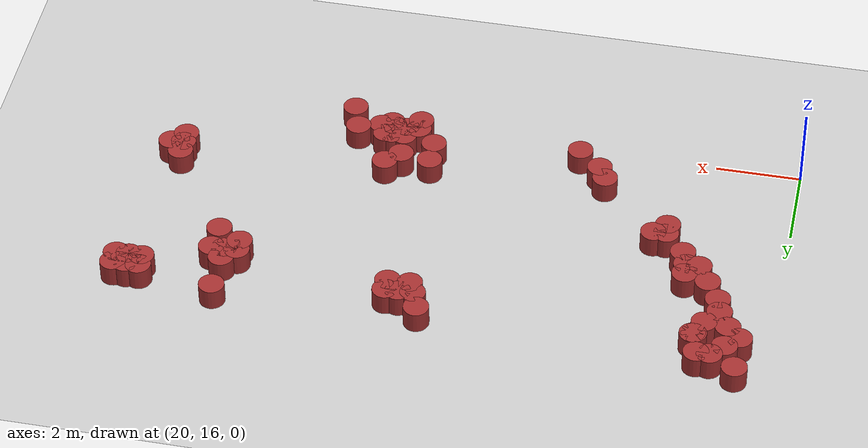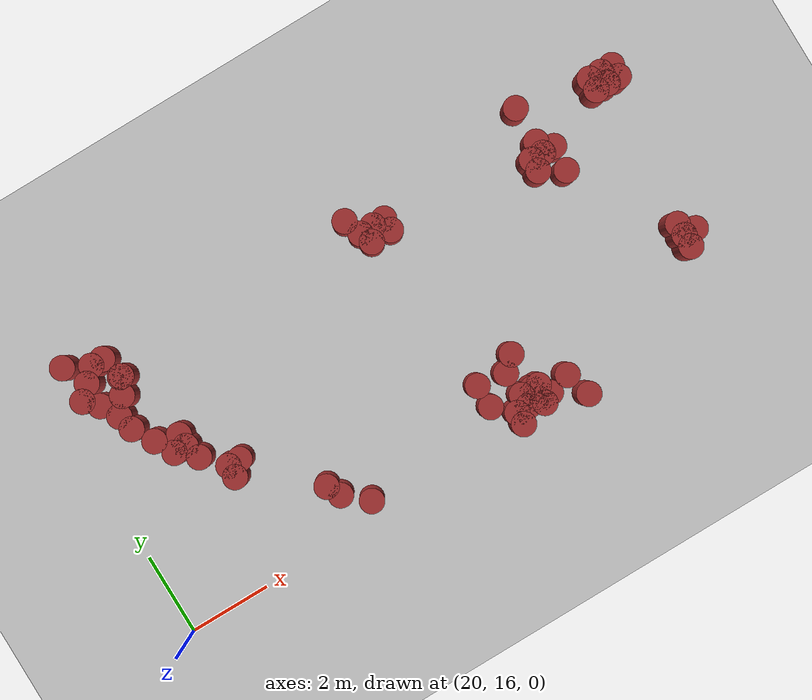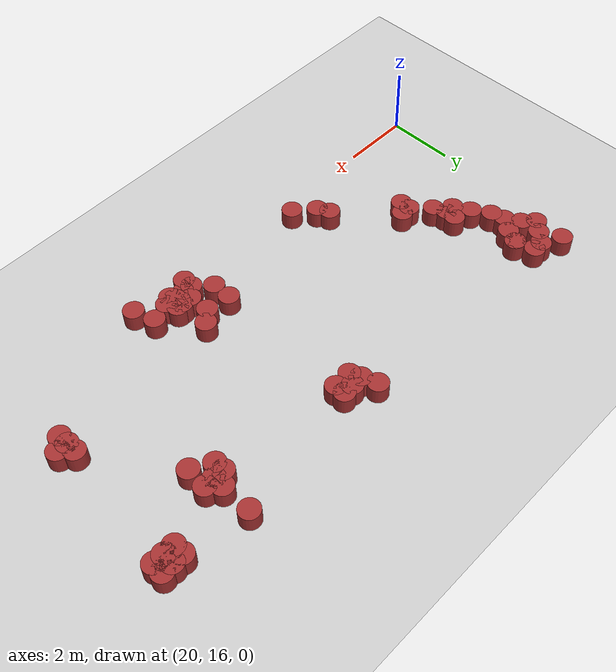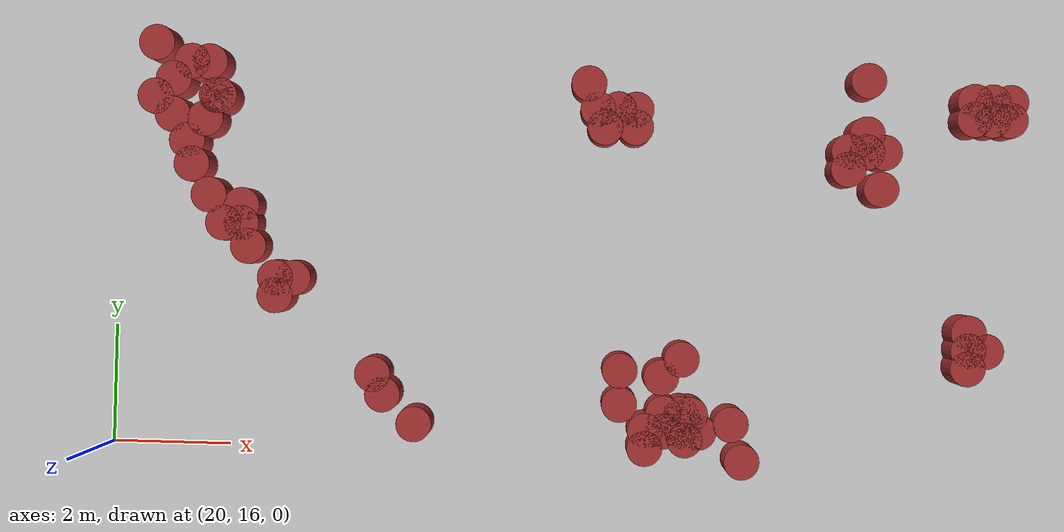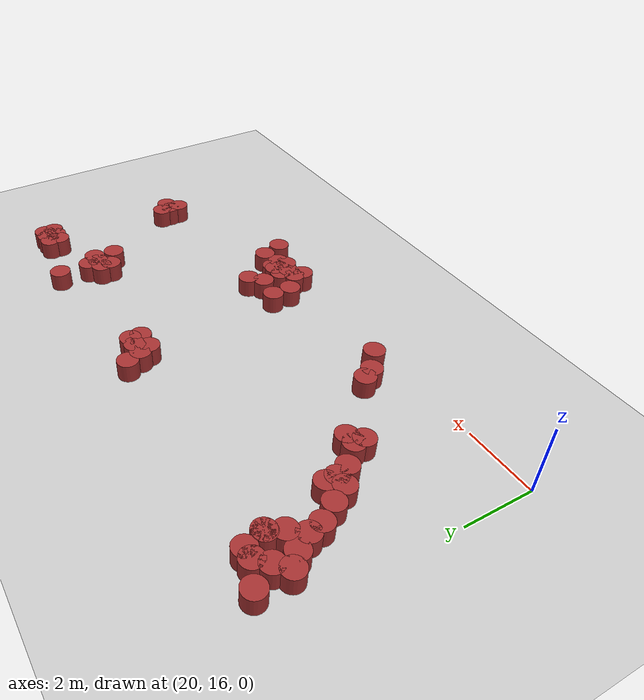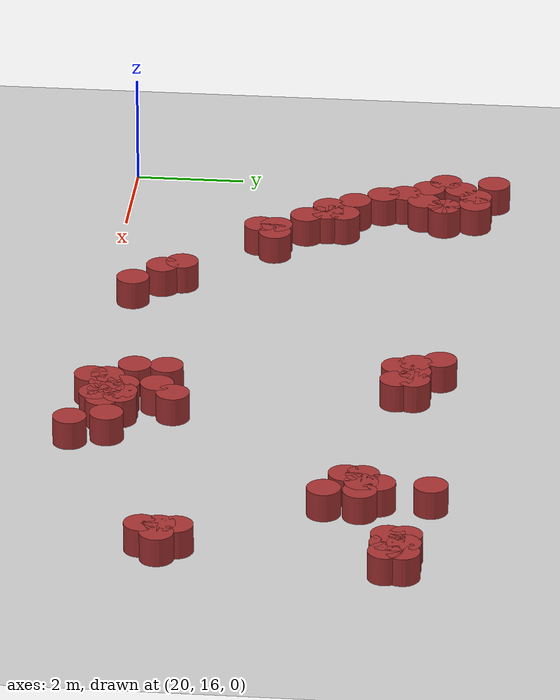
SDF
<sdf version="1.6">
 <world name="default">
  <model name="ground_plane">
   <static>1</static>
   <link name="link">
    <collision name="collision">
     <geometry><plane><normal>0 0 1</normal><size>100 100</size></plane></geometry>
     <surface><friction><ode><mu>100</mu><mu2>50</mu2></ode></friction></surface>
    </collision>
    <visual name="visual">
     <cast_shadows>0</cast_shadows>
     <geometry><plane><normal>0 0 1</normal><size>100 100</size></plane></geometry>
     <material>
      <script><uri>file://media/materials/scripts/gazebo.material</uri><name>Gazebo/Grey</name></script>
     </material>
    </visual>
   </link>
  </model>
  <model name="unit_cylinder_157">
   <static>1</static>
   <pose>30.5428 16.6467 0 0 -0 0</pose>
   <link name="link">
    <inertial>
     <mass>1</mass>
     <inertia><ixx>0.145833</ixx><ixy>0</ixy><ixz>0</ixz><iyy>0.145833</iyy><iyz>0</iyz><izz>0.125</izz></inertia>
    </inertial>
    <collision name="collision">
     <geometry><cylinder><radius>0.3</radius><length>1</length></cylinder></geometry>
    </collision>
    <visual name="visual">
     <geometry><cylinder><radius>0.3</radius><length>1</length></cylinder></geometry>
     <material><ambient>0.648 0.192 0.192 1</ambient><diffuse>0.648 0.192 0.192 1</diffuse></material>
     <material>
      <script><name>Gazebo/Grey</name><uri>file://media/materials/scripts/gazebo.material</uri></script>
     </material>
    </visual>
   </link>
  </model>
  <model name="unit_cylinder_230">
   <static>1</static>
   <pose>21.7649 21.9396 0 0 -0 0</pose>
   <link name="link">
    <inertial>
     <mass>1</mass>
     <inertia><ixx>0.145833</ixx><ixy>0</ixy><ixz>0</ixz><iyy>0.145833</iyy><iyz>0</iyz><izz>0.125</izz></inertia>
    </inertial>
    <collision name="collision">
     <geometry><cylinder><radius>0.3</radius><length>1</length></cylinder></geometry>
    </collision>
    <visual name="visual">
     <geometry><cylinder><radius>0.3</radius><length>1</length></cylinder></geometry>
     <material><ambient>0.648 0.192 0.192 1</ambient><diffuse>0.648 0.192 0.192 1</diffuse></material>
     <material>
      <script><name>Gazebo/Grey</name><uri>file://media/materials/scripts/gazebo.material</uri></script>
     </material>
    </visual>
   </link>
  </model>
  <model name="unit_cylinder_243">
   <static>1</static>
   <pose>21.731 21.9384 0 0 -0 0</pose>
   <link name="link">
    <inertial>
     <mass>1</mass>
     <inertia><ixx>0.145833</ixx><ixy>0</ixy><ixz>0</ixz><iyy>0.145833</iyy><iyz>0</iyz><izz>0.125</izz></inertia>
    </inertial>
    <collision name="collision">
     <geometry><cylinder><radius>0.3</radius><length>1</length></cylinder></geometry>
    </collision>
    <visual name="visual">
     <geometry><cylinder><radius>0.3</radius><length>1</length></cylinder></geometry>
     <material><ambient>0.648 0.192 0.192 1</ambient><diffuse>0.648 0.192 0.192 1</diffuse></material>
     <material>
      <script><name>Gazebo/Grey</name><uri>file://media/materials/scripts/gazebo.material</uri></script>
     </material>
    </visual>
   </link>
  </model>
  <model name="unit_cylinder_244">
   <static>1</static>
   <pose>21.5494 21.5438 0 0 -0 0</pose>
   <link name="link">
    <inertial>
     <mass>1</mass>
     <inertia><ixx>0.145833</ixx><ixy>0</ixy><ixz>0</ixz><iyy>0.145833</iyy><iyz>0</iyz><izz>0.125</izz></inertia>
    </inertial>
    <collision name="collision">
     <geometry><cylinder><radius>0.3</radius><length>1</length></cylinder></geometry>
    </collision>
    <visual name="visual">
     <geometry><cylinder><radius>0.3</radius><length>1</length></cylinder></geometry>
     <material><ambient>0.648 0.192 0.192 1</ambient><diffuse>0.648 0.192 0.192 1</diffuse></material>
     <material>
      <script><name>Gazebo/Grey</name><uri>file://media/materials/scripts/gazebo.material</uri></script>
     </material>
    </visual>
   </link>
  </model>
  <model name="unit_cylinder_247">
   <static>1</static>
   <pose>21.3401 20.7751 0 0 -0 0</pose>
   <link name="link">
    <inertial>
     <mass>1</mass>
     <inertia><ixx>0.145833</ixx><ixy>0</ixy><ixz>0</ixz><iyy>0.145833</iyy><iyz>0</iyz><izz>0.125</izz></inertia>
    </inertial>
    <collision name="collision">
     <geometry><cylinder><radius>0.3</radius><length>1</length></cylinder></geometry>
    </collision>
    <visual name="visual">
     <geometry><cylinder><radius>0.3</radius><length>1</length></cylinder></geometry>
     <material><ambient>0.648 0.192 0.192 1</ambient><diffuse>0.648 0.192 0.192 1</diffuse></material>
     <material>
      <script><name>Gazebo/Grey</name><uri>file://media/materials/scripts/gazebo.material</uri></script>
     </material>
    </visual>
   </link>
  </model>
  <model name="unit_cylinder_248">
   <static>1</static>
   <pose>21.2494 21.1669 0 0 -0 0</pose>
   <link name="link">
    <inertial>
     <mass>1</mass>
     <inertia><ixx>0.145833</ixx><ixy>0</ixy><ixz>0</ixz><iyy>0.145833</iyy><iyz>0</iyz><izz>0.125</izz></inertia>
    </inertial>
    <collision name="collision">
     <geometry><cylinder><radius>0.3</radius><length>1</length></cylinder></geometry>
    </collision>
    <visual name="visual">
     <geometry><cylinder><radius>0.3</radius><length>1</length></cylinder></geometry>
     <material><ambient>0.648 0.192 0.192 1</ambient><diffuse>0.648 0.192 0.192 1</diffuse></material>
     <material>
      <script><name>Gazebo/Grey</name><uri>file://media/materials/scripts/gazebo.material</uri></script>
     </material>
    </visual>
   </link>
  </model>
  <model name="unit_cylinder_249">
   <static>1</static>
   <pose>21.6412 20.2652 0 0 -0 0</pose>
   <link name="link">
    <inertial>
     <mass>1</mass>
     <inertia><ixx>0.145833</ixx><ixy>0</ixy><ixz>0</ixz><iyy>0.145833</iyy><iyz>0</iyz><izz>0.125</izz></inertia>
    </inertial>
    <collision name="collision">
     <geometry><cylinder><radius>0.3</radius><length>1</length></cylinder></geometry>
    </collision>
    <visual name="visual">
     <geometry><cylinder><radius>0.3</radius><length>1</length></cylinder></geometry>
     <material><ambient>0.648 0.192 0.192 1</ambient><diffuse>0.648 0.192 0.192 1</diffuse></material>
     <material>
      <script><name>Gazebo/Grey</name><uri>file://media/materials/scripts/gazebo.material</uri></script>
     </material>
    </visual>
   </link>
  </model>
  <model name="unit_cylinder_251">
   <static>1</static>
   <pose>22.3307 19.4181 0 0 -0 0</pose>
   <link name="link">
    <inertial>
     <mass>1</mass>
     <inertia><ixx>0.145833</ixx><ixy>0</ixy><ixz>0</ixz><iyy>0.145833</iyy><iyz>0</iyz><izz>0.125</izz></inertia>
    </inertial>
    <collision name="collision">
     <geometry><cylinder><radius>0.3</radius><length>1</length></cylinder></geometry>
    </collision>
    <visual name="visual">
     <geometry><cylinder><radius>0.3</radius><length>1</length></cylinder></geometry>
     <material><ambient>0.648 0.192 0.192 1</ambient><diffuse>0.648 0.192 0.192 1</diffuse></material>
     <material>
      <script><name>Gazebo/Grey</name><uri>file://media/materials/scripts/gazebo.material</uri></script>
     </material>
    </visual>
   </link>
  </model>
  <model name="unit_cylinder_254">
   <static>1</static>
   <pose>28.6458 17.5013 0 0 -0 0</pose>
   <link name="link">
    <inertial>
     <mass>1</mass>
     <inertia><ixx>0.145833</ixx><ixy>0</ixy><ixz>0</ixz><iyy>0.145833</iyy><iyz>0</iyz><izz>0.125</izz></inertia>
    </inertial>
    <collision name="collision">
     <geometry><cylinder><radius>0.3</radius><length>1</length></cylinder></geometry>
    </collision>
    <visual name="visual">
     <geometry><cylinder><radius>0.3</radius><length>1</length></cylinder></geometry>
     <material><ambient>0.648 0.192 0.192 1</ambient><diffuse>0.648 0.192 0.192 1</diffuse></material>
     <material>
      <script><name>Gazebo/Grey</name><uri>file://media/materials/scripts/gazebo.material</uri></script>
     </material>
    </visual>
   </link>
  </model>
  <model name="unit_cylinder_260">
   <static>1</static>
   <pose>20.7 21.9 0 0 -0 0</pose>
   <link name="link">
    <inertial>
     <mass>1</mass>
     <inertia><ixx>0.145833</ixx><ixy>0</ixy><ixz>0</ixz><iyy>0.145833</iyy><iyz>0</iyz><izz>0.125</izz></inertia>
    </inertial>
    <collision name="collision">
     <geometry><cylinder><radius>0.3</radius><length>1</length></cylinder></geometry>
    </collision>
    <visual name="visual">
     <geometry><cylinder><radius>0.3</radius><length>1</length></cylinder></geometry>
     <material><ambient>0.648 0.192 0.192 1</ambient><diffuse>0.648 0.192 0.192 1</diffuse></material>
     <material>
      <script><name>Gazebo/Grey</name><uri>file://media/materials/scripts/gazebo.material</uri></script>
     </material>
    </visual>
   </link>
  </model>
  <model name="unit_cylinder_261">
   <static>1</static>
   <pose>20.7 22.8 0 0 -0 0</pose>
   <link name="link">
    <inertial>
     <mass>1</mass>
     <inertia><ixx>0.145833</ixx><ixy>0</ixy><ixz>0</ixz><iyy>0.145833</iyy><iyz>0</iyz><izz>0.125</izz></inertia>
    </inertial>
    <collision name="collision">
     <geometry><cylinder><radius>0.3</radius><length>1</length></cylinder></geometry>
    </collision>
    <visual name="visual">
     <geometry><cylinder><radius>0.3</radius><length>1</length></cylinder></geometry>
     <material><ambient>0.648 0.192 0.192 1</ambient><diffuse>0.648 0.192 0.192 1</diffuse></material>
     <material>
      <script><name>Gazebo/Grey</name><uri>file://media/materials/scripts/gazebo.material</uri></script>
     </material>
    </visual>
   </link>
  </model>
  <model name="unit_cylinder_268">
   <static>1</static>
   <pose>21 21.6 0 0 -0 0</pose>
   <link name="link">
    <inertial>
     <mass>1</mass>
     <inertia><ixx>0.145833</ixx><ixy>0</ixy><ixz>0</ixz><iyy>0.145833</iyy><iyz>0</iyz><izz>0.125</izz></inertia>
    </inertial>
    <collision name="collision">
     <geometry><cylinder><radius>0.3</radius><length>1</length></cylinder></geometry>
    </collision>
    <visual name="visual">
     <geometry><cylinder><radius>0.3</radius><length>1</length></cylinder></geometry>
     <material><ambient>0.648 0.192 0.192 1</ambient><diffuse>0.648 0.192 0.192 1</diffuse></material>
     <material>
      <script><name>Gazebo/Grey</name><uri>file://media/materials/scripts/gazebo.material</uri></script>
     </material>
    </visual>
   </link>
  </model>
  <model name="unit_cylinder_269">
   <static>1</static>
   <pose>21 22.2 0 0 -0 0</pose>
   <link name="link">
    <inertial>
     <mass>1</mass>
     <inertia><ixx>0.145833</ixx><ixy>0</ixy><ixz>0</ixz><iyy>0.145833</iyy><iyz>0</iyz><izz>0.125</izz></inertia>
    </inertial>
    <collision name="collision">
     <geometry><cylinder><radius>0.3</radius><length>1</length></cylinder></geometry>
    </collision>
    <visual name="visual">
     <geometry><cylinder><radius>0.3</radius><length>1</length></cylinder></geometry>
     <material><ambient>0.648 0.192 0.192 1</ambient><diffuse>0.648 0.192 0.192 1</diffuse></material>
     <material>
      <script><name>Gazebo/Grey</name><uri>file://media/materials/scripts/gazebo.material</uri></script>
     </material>
    </visual>
   </link>
  </model>
  <model name="unit_cylinder_275">
   <static>1</static>
   <pose>21.3 22.5 0 0 -0 0</pose>
   <link name="link">
    <inertial>
     <mass>1</mass>
     <inertia><ixx>0.145833</ixx><ixy>0</ixy><ixz>0</ixz><iyy>0.145833</iyy><iyz>0</iyz><izz>0.125</izz></inertia>
    </inertial>
    <collision name="collision">
     <geometry><cylinder><radius>0.3</radius><length>1</length></cylinder></geometry>
    </collision>
    <visual name="visual">
     <geometry><cylinder><radius>0.3</radius><length>1</length></cylinder></geometry>
     <material><ambient>0.648 0.192 0.192 1</ambient><diffuse>0.648 0.192 0.192 1</diffuse></material>
     <material>
      <script><name>Gazebo/Grey</name><uri>file://media/materials/scripts/gazebo.material</uri></script>
     </material>
    </visual>
   </link>
  </model>
  <model name="unit_cylinder_278">
   <static>1</static>
   <pose>21.6 22.5 0 0 -0 0</pose>
   <link name="link">
    <inertial>
     <mass>1</mass>
     <inertia><ixx>0.145833</ixx><ixy>0</ixy><ixz>0</ixz><iyy>0.145833</iyy><iyz>0</iyz><izz>0.125</izz></inertia>
    </inertial>
    <collision name="collision">
     <geometry><cylinder><radius>0.3</radius><length>1</length></cylinder></geometry>
    </collision>
    <visual name="visual">
     <geometry><cylinder><radius>0.3</radius><length>1</length></cylinder></geometry>
     <material><ambient>0.648 0.192 0.192 1</ambient><diffuse>0.648 0.192 0.192 1</diffuse></material>
     <material>
      <script><name>Gazebo/Grey</name><uri>file://media/materials/scripts/gazebo.material</uri></script>
     </material>
    </visual>
   </link>
  </model>
  <model name="unit_cylinder_283">
   <static>1</static>
   <pose>21.9 19.8 0 0 -0 0</pose>
   <link name="link">
    <inertial>
     <mass>1</mass>
     <inertia><ixx>0.145833</ixx><ixy>0</ixy><ixz>0</ixz><iyy>0.145833</iyy><iyz>0</iyz><izz>0.125</izz></inertia>
    </inertial>
    <collision name="collision">
     <geometry><cylinder><radius>0.3</radius><length>1</length></cylinder></geometry>
    </collision>
    <visual name="visual">
     <geometry><cylinder><radius>0.3</radius><length>1</length></cylinder></geometry>
     <material><ambient>0.648 0.192 0.192 1</ambient><diffuse>0.648 0.192 0.192 1</diffuse></material>
     <material>
      <script><name>Gazebo/Grey</name><uri>file://media/materials/scripts/gazebo.material</uri></script>
     </material>
    </visual>
   </link>
  </model>
  <model name="unit_cylinder_288">
   <static>1</static>
   <pose>22.2 19.8 0 0 -0 0</pose>
   <link name="link">
    <inertial>
     <mass>1</mass>
     <inertia><ixx>0.145833</ixx><ixy>0</ixy><ixz>0</ixz><iyy>0.145833</iyy><iyz>0</iyz><izz>0.125</izz></inertia>
    </inertial>
    <collision name="collision">
     <geometry><cylinder><radius>0.3</radius><length>1</length></cylinder></geometry>
    </collision>
    <visual name="visual">
     <geometry><cylinder><radius>0.3</radius><length>1</length></cylinder></geometry>
     <material><ambient>0.648 0.192 0.192 1</ambient><diffuse>0.648 0.192 0.192 1</diffuse></material>
     <material>
      <script><name>Gazebo/Grey</name><uri>file://media/materials/scripts/gazebo.material</uri></script>
     </material>
    </visual>
   </link>
  </model>
  <model name="unit_cylinder_289">
   <static>1</static>
   <pose>22.2 20.1 0 0 -0 0</pose>
   <link name="link">
    <inertial>
     <mass>1</mass>
     <inertia><ixx>0.145833</ixx><ixy>0</ixy><ixz>0</ixz><iyy>0.145833</iyy><iyz>0</iyz><izz>0.125</izz></inertia>
    </inertial>
    <collision name="collision">
     <geometry><cylinder><radius>0.3</radius><length>1</length></cylinder></geometry>
    </collision>
    <visual name="visual">
     <geometry><cylinder><radius>0.3</radius><length>1</length></cylinder></geometry>
     <material><ambient>0.648 0.192 0.192 1</ambient><diffuse>0.648 0.192 0.192 1</diffuse></material>
     <material>
      <script><name>Gazebo/Grey</name><uri>file://media/materials/scripts/gazebo.material</uri></script>
     </material>
    </visual>
   </link>
  </model>
  <model name="unit_cylinder_295">
   <static>1</static>
   <pose>22.8 18.6 0 0 -0 0</pose>
   <link name="link">
    <inertial>
     <mass>1</mass>
     <inertia><ixx>0.145833</ixx><ixy>0</ixy><ixz>0</ixz><iyy>0.145833</iyy><iyz>0</iyz><izz>0.125</izz></inertia>
    </inertial>
    <collision name="collision">
     <geometry><cylinder><radius>0.3</radius><length>1</length></cylinder></geometry>
    </collision>
    <visual name="visual">
     <geometry><cylinder><radius>0.3</radius><length>1</length></cylinder></geometry>
     <material><ambient>0.648 0.192 0.192 1</ambient><diffuse>0.648 0.192 0.192 1</diffuse></material>
     <material>
      <script><name>Gazebo/Grey</name><uri>file://media/materials/scripts/gazebo.material</uri></script>
     </material>
    </visual>
   </link>
  </model>
  <model name="unit_cylinder_296">
   <static>1</static>
   <pose>22.8 18.9 0 0 -0 0</pose>
   <link name="link">
    <inertial>
     <mass>1</mass>
     <inertia><ixx>0.145833</ixx><ixy>0</ixy><ixz>0</ixz><iyy>0.145833</iyy><iyz>0</iyz><izz>0.125</izz></inertia>
    </inertial>
    <collision name="collision">
     <geometry><cylinder><radius>0.3</radius><length>1</length></cylinder></geometry>
    </collision>
    <visual name="visual">
     <geometry><cylinder><radius>0.3</radius><length>1</length></cylinder></geometry>
     <material><ambient>0.648 0.192 0.192 1</ambient><diffuse>0.648 0.192 0.192 1</diffuse></material>
     <material>
      <script><name>Gazebo/Grey</name><uri>file://media/materials/scripts/gazebo.material</uri></script>
     </material>
    </visual>
   </link>
  </model>
  <model name="unit_cylinder_307">
   <static>1</static>
   <pose>23.1 18.9 0 0 -0 0</pose>
   <link name="link">
    <inertial>
     <mass>1</mass>
     <inertia><ixx>0.145833</ixx><ixy>0</ixy><ixz>0</ixz><iyy>0.145833</iyy><iyz>0</iyz><izz>0.125</izz></inertia>
    </inertial>
    <collision name="collision">
     <geometry><cylinder><radius>0.3</radius><length>1</length></cylinder></geometry>
    </collision>
    <visual name="visual">
     <geometry><cylinder><radius>0.3</radius><length>1</length></cylinder></geometry>
     <material><ambient>0.648 0.192 0.192 1</ambient><diffuse>0.648 0.192 0.192 1</diffuse></material>
     <material>
      <script><name>Gazebo/Grey</name><uri>file://media/materials/scripts/gazebo.material</uri></script>
     </material>
    </visual>
   </link>
  </model>
  <model name="unit_cylinder_309">
   <static>1</static>
   <pose>28.2845 21.5885 0 0 -0 0</pose>
   <link name="link">
    <inertial>
     <mass>1</mass>
     <inertia><ixx>0.145833</ixx><ixy>0</ixy><ixz>0</ixz><iyy>0.145833</iyy><iyz>0</iyz><izz>0.125</izz></inertia>
    </inertial>
    <collision name="collision">
     <geometry><cylinder><radius>0.3</radius><length>1</length></cylinder></geometry>
    </collision>
    <visual name="visual">
     <geometry><cylinder><radius>0.3</radius><length>1</length></cylinder></geometry>
     <material><ambient>0.648 0.192 0.192 1</ambient><diffuse>0.648 0.192 0.192 1</diffuse></material>
     <material>
      <script><name>Gazebo/Grey</name><uri>file://media/materials/scripts/gazebo.material</uri></script>
     </material>
    </visual>
   </link>
  </model>
  <model name="unit_cylinder_310">
   <static>1</static>
   <pose>27.9939 22.3195 0 0 -0 0</pose>
   <link name="link">
    <inertial>
     <mass>1</mass>
     <inertia><ixx>0.145833</ixx><ixy>0</ixy><ixz>0</ixz><iyy>0.145833</iyy><iyz>0</iyz><izz>0.125</izz></inertia>
    </inertial>
    <collision name="collision">
     <geometry><cylinder><radius>0.3</radius><length>1</length></cylinder></geometry>
    </collision>
    <visual name="visual">
     <geometry><cylinder><radius>0.3</radius><length>1</length></cylinder></geometry>
     <material><ambient>0.648 0.192 0.192 1</ambient><diffuse>0.648 0.192 0.192 1</diffuse></material>
     <material>
      <script><name>Gazebo/Grey</name><uri>file://media/materials/scripts/gazebo.material</uri></script>
     </material>
    </visual>
   </link>
  </model>
  <model name="unit_cylinder_311">
   <static>1</static>
   <pose>29.6839 17.7191 0 0 -0 0</pose>
   <link name="link">
    <inertial>
     <mass>1</mass>
     <inertia><ixx>0.145833</ixx><ixy>0</ixy><ixz>0</ixz><iyy>0.145833</iyy><iyz>0</iyz><izz>0.125</izz></inertia>
    </inertial>
    <collision name="collision">
     <geometry><cylinder><radius>0.3</radius><length>1</length></cylinder></geometry>
    </collision>
    <visual name="visual">
     <geometry><cylinder><radius>0.3</radius><length>1</length></cylinder></geometry>
     <material><ambient>0.648 0.192 0.192 1</ambient><diffuse>0.648 0.192 0.192 1</diffuse></material>
     <material>
      <script><name>Gazebo/Grey</name><uri>file://media/materials/scripts/gazebo.material</uri></script>
     </material>
    </visual>
   </link>
  </model>
  <model name="unit_cylinder_312">
   <static>1</static>
   <pose>29.3489 17.4075 0 0 -0 0</pose>
   <link name="link">
    <inertial>
     <mass>1</mass>
     <inertia><ixx>0.145833</ixx><ixy>0</ixy><ixz>0</ixz><iyy>0.145833</iyy><iyz>0</iyz><izz>0.125</izz></inertia>
    </inertial>
    <collision name="collision">
     <geometry><cylinder><radius>0.3</radius><length>1</length></cylinder></geometry>
    </collision>
    <visual name="visual">
     <geometry><cylinder><radius>0.3</radius><length>1</length></cylinder></geometry>
     <material><ambient>0.648 0.192 0.192 1</ambient><diffuse>0.648 0.192 0.192 1</diffuse></material>
     <material>
      <script><name>Gazebo/Grey</name><uri>file://media/materials/scripts/gazebo.material</uri></script>
     </material>
    </visual>
   </link>
  </model>
  <model name="unit_cylinder_317">
   <static>1</static>
   <pose>24.4813 17.3256 0 0 -0 0</pose>
   <link name="link">
    <inertial>
     <mass>1</mass>
     <inertia><ixx>0.145833</ixx><ixy>0</ixy><ixz>0</ixz><iyy>0.145833</iyy><iyz>0</iyz><izz>0.125</izz></inertia>
    </inertial>
    <collision name="collision">
     <geometry><cylinder><radius>0.3</radius><length>1</length></cylinder></geometry>
    </collision>
    <visual name="visual">
     <geometry><cylinder><radius>0.3</radius><length>1</length></cylinder></geometry>
     <material><ambient>0.648 0.192 0.192 1</ambient><diffuse>0.648 0.192 0.192 1</diffuse></material>
     <material>
      <script><name>Gazebo/Grey</name><uri>file://media/materials/scripts/gazebo.material</uri></script>
     </material>
    </visual>
   </link>
  </model>
  <model name="unit_cylinder_320">
   <static>1</static>
   <pose>25.2 16.5 0 0 -0 0</pose>
   <link name="link">
    <inertial>
     <mass>1</mass>
     <inertia><ixx>0.145833</ixx><ixy>0</ixy><ixz>0</ixz><iyy>0.145833</iyy><iyz>0</iyz><izz>0.125</izz></inertia>
    </inertial>
    <collision name="collision">
     <geometry><cylinder><radius>0.3</radius><length>1</length></cylinder></geometry>
    </collision>
    <visual name="visual">
     <geometry><cylinder><radius>0.3</radius><length>1</length></cylinder></geometry>
     <material><ambient>0.648 0.192 0.192 1</ambient><diffuse>0.648 0.192 0.192 1</diffuse></material>
     <material>
      <script><name>Gazebo/Grey</name><uri>file://media/materials/scripts/gazebo.material</uri></script>
     </material>
    </visual>
   </link>
  </model>
  <model name="unit_cylinder_321">
   <static>1</static>
   <pose>28.1583 21.8856 0 0 -0 0</pose>
   <link name="link">
    <inertial>
     <mass>1</mass>
     <inertia><ixx>0.145833</ixx><ixy>0</ixy><ixz>0</ixz><iyy>0.145833</iyy><iyz>0</iyz><izz>0.125</izz></inertia>
    </inertial>
    <collision name="collision">
     <geometry><cylinder><radius>0.3</radius><length>1</length></cylinder></geometry>
    </collision>
    <visual name="visual">
     <geometry><cylinder><radius>0.3</radius><length>1</length></cylinder></geometry>
     <material><ambient>0.648 0.192 0.192 1</ambient><diffuse>0.648 0.192 0.192 1</diffuse></material>
     <material>
      <script><name>Gazebo/Grey</name><uri>file://media/materials/scripts/gazebo.material</uri></script>
     </material>
    </visual>
   </link>
  </model>
  <model name="unit_cylinder_331">
   <static>1</static>
   <pose>24.6576 16.9847 0 0 -0 0</pose>
   <link name="link">
    <inertial>
     <mass>1</mass>
     <inertia><ixx>0.145833</ixx><ixy>0</ixy><ixz>0</ixz><iyy>0.145833</iyy><iyz>0</iyz><izz>0.125</izz></inertia>
    </inertial>
    <collision name="collision">
     <geometry><cylinder><radius>0.3</radius><length>1</length></cylinder></geometry>
    </collision>
    <visual name="visual">
     <geometry><cylinder><radius>0.3</radius><length>1</length></cylinder></geometry>
     <material><ambient>0.648 0.192 0.192 1</ambient><diffuse>0.648 0.192 0.192 1</diffuse></material>
     <material>
      <script><name>Gazebo/Grey</name><uri>file://media/materials/scripts/gazebo.material</uri></script>
     </material>
    </visual>
   </link>
  </model>
  <model name="unit_cylinder_337">
   <static>1</static>
   <pose>30.741 16.0186 0 0 -0 0</pose>
   <link name="link">
    <inertial>
     <mass>1</mass>
     <inertia><ixx>0.145833</ixx><ixy>0</ixy><ixz>0</ixz><iyy>0.145833</iyy><iyz>0</iyz><izz>0.125</izz></inertia>
    </inertial>
    <collision name="collision">
     <geometry><cylinder><radius>0.3</radius><length>1</length></cylinder></geometry>
    </collision>
    <visual name="visual">
     <geometry><cylinder><radius>0.3</radius><length>1</length></cylinder></geometry>
     <material><ambient>0.648 0.192 0.192 1</ambient><diffuse>0.648 0.192 0.192 1</diffuse></material>
     <material>
      <script><name>Gazebo/Grey</name><uri>file://media/materials/scripts/gazebo.material</uri></script>
     </material>
    </visual>
   </link>
  </model>
  <model name="unit_cylinder_347">
   <static>1</static>
   <pose>28.6523 16.9294 0 0 -0 0</pose>
   <link name="link">
    <inertial>
     <mass>1</mass>
     <inertia><ixx>0.145833</ixx><ixy>0</ixy><ixz>0</ixz><iyy>0.145833</iyy><iyz>0</iyz><izz>0.125</izz></inertia>
    </inertial>
    <collision name="collision">
     <geometry><cylinder><radius>0.3</radius><length>1</length></cylinder></geometry>
    </collision>
    <visual name="visual">
     <geometry><cylinder><radius>0.3</radius><length>1</length></cylinder></geometry>
     <material><ambient>0.648 0.192 0.192 1</ambient><diffuse>0.648 0.192 0.192 1</diffuse></material>
     <material>
      <script><name>Gazebo/Grey</name><uri>file://media/materials/scripts/gazebo.material</uri></script>
     </material>
    </visual>
   </link>
  </model>
  <model name="unit_cylinder_351">
   <static>1</static>
   <pose>29.7714 16.3636 0 0 -0 0</pose>
   <link name="link">
    <inertial>
     <mass>1</mass>
     <inertia><ixx>0.145833</ixx><ixy>0</ixy><ixz>0</ixz><iyy>0.145833</iyy><iyz>0</iyz><izz>0.125</izz></inertia>
    </inertial>
    <collision name="collision">
     <geometry><cylinder><radius>0.3</radius><length>1</length></cylinder></geometry>
    </collision>
    <visual name="visual">
     <geometry><cylinder><radius>0.3</radius><length>1</length></cylinder></geometry>
     <material><ambient>0.648 0.192 0.192 1</ambient><diffuse>0.648 0.192 0.192 1</diffuse></material>
     <material>
      <script><name>Gazebo/Grey</name><uri>file://media/materials/scripts/gazebo.material</uri></script>
     </material>
    </visual>
   </link>
  </model>
  <model name="unit_cylinder_373">
   <static>1</static>
   <pose>28.5 21.9 0 0 -0 0</pose>
   <link name="link">
    <inertial>
     <mass>1</mass>
     <inertia><ixx>0.145833</ixx><ixy>0</ixy><ixz>0</ixz><iyy>0.145833</iyy><iyz>0</iyz><izz>0.125</izz></inertia>
    </inertial>
    <collision name="collision">
     <geometry><cylinder><radius>0.3</radius><length>1</length></cylinder></geometry>
    </collision>
    <visual name="visual">
     <geometry><cylinder><radius>0.3</radius><length>1</length></cylinder></geometry>
     <material><ambient>0.648 0.192 0.192 1</ambient><diffuse>0.648 0.192 0.192 1</diffuse></material>
     <material>
      <script><name>Gazebo/Grey</name><uri>file://media/materials/scripts/gazebo.material</uri></script>
     </material>
    </visual>
   </link>
  </model>
  <model name="unit_cylinder_379">
   <static>1</static>
   <pose>28.8 21.6 0 0 -0 0</pose>
   <link name="link">
    <inertial>
     <mass>1</mass>
     <inertia><ixx>0.145833</ixx><ixy>0</ixy><ixz>0</ixz><iyy>0.145833</iyy><iyz>0</iyz><izz>0.125</izz></inertia>
    </inertial>
    <collision name="collision">
     <geometry><cylinder><radius>0.3</radius><length>1</length></cylinder></geometry>
    </collision>
    <visual name="visual">
     <geometry><cylinder><radius>0.3</radius><length>1</length></cylinder></geometry>
     <material><ambient>0.648 0.192 0.192 1</ambient><diffuse>0.648 0.192 0.192 1</diffuse></material>
     <material>
      <script><name>Gazebo/Grey</name><uri>file://media/materials/scripts/gazebo.material</uri></script>
     </material>
    </visual>
   </link>
  </model>
  <model name="unit_cylinder_380">
   <static>1</static>
   <pose>28.8 21.9 0 0 -0 0</pose>
   <link name="link">
    <inertial>
     <mass>1</mass>
     <inertia><ixx>0.145833</ixx><ixy>0</ixy><ixz>0</ixz><iyy>0.145833</iyy><iyz>0</iyz><izz>0.125</izz></inertia>
    </inertial>
    <collision name="collision">
     <geometry><cylinder><radius>0.3</radius><length>1</length></cylinder></geometry>
    </collision>
    <visual name="visual">
     <geometry><cylinder><radius>0.3</radius><length>1</length></cylinder></geometry>
     <material><ambient>0.648 0.192 0.192 1</ambient><diffuse>0.648 0.192 0.192 1</diffuse></material>
     <material>
      <script><name>Gazebo/Grey</name><uri>file://media/materials/scripts/gazebo.material</uri></script>
     </material>
    </visual>
   </link>
  </model>
  <model name="unit_cylinder_384">
   <static>1</static>
   <pose>29.1 16.2 0 0 -0 0</pose>
   <link name="link">
    <inertial>
     <mass>1</mass>
     <inertia><ixx>0.145833</ixx><ixy>0</ixy><ixz>0</ixz><iyy>0.145833</iyy><iyz>0</iyz><izz>0.125</izz></inertia>
    </inertial>
    <collision name="collision">
     <geometry><cylinder><radius>0.3</radius><length>1</length></cylinder></geometry>
    </collision>
    <visual name="visual">
     <geometry><cylinder><radius>0.3</radius><length>1</length></cylinder></geometry>
     <material><ambient>0.648 0.192 0.192 1</ambient><diffuse>0.648 0.192 0.192 1</diffuse></material>
     <material>
      <script><name>Gazebo/Grey</name><uri>file://media/materials/scripts/gazebo.material</uri></script>
     </material>
    </visual>
   </link>
  </model>
  <model name="unit_cylinder_385">
   <static>1</static>
   <pose>29.1 16.5 0 0 -0 0</pose>
   <link name="link">
    <inertial>
     <mass>1</mass>
     <inertia><ixx>0.145833</ixx><ixy>0</ixy><ixz>0</ixz><iyy>0.145833</iyy><iyz>0</iyz><izz>0.125</izz></inertia>
    </inertial>
    <collision name="collision">
     <geometry><cylinder><radius>0.3</radius><length>1</length></cylinder></geometry>
    </collision>
    <visual name="visual">
     <geometry><cylinder><radius>0.3</radius><length>1</length></cylinder></geometry>
     <material><ambient>0.648 0.192 0.192 1</ambient><diffuse>0.648 0.192 0.192 1</diffuse></material>
     <material>
      <script><name>Gazebo/Grey</name><uri>file://media/materials/scripts/gazebo.material</uri></script>
     </material>
    </visual>
   </link>
  </model>
  <model name="unit_cylinder_386">
   <static>1</static>
   <pose>32.959 20.6773 0 0 -0 0</pose>
   <link name="link">
    <inertial>
     <mass>1</mass>
     <inertia><ixx>0.145833</ixx><ixy>0</ixy><ixz>0</ixz><iyy>0.145833</iyy><iyz>0</iyz><izz>0.125</izz></inertia>
    </inertial>
    <collision name="collision">
     <geometry><cylinder><radius>0.3</radius><length>1</length></cylinder></geometry>
    </collision>
    <visual name="visual">
     <geometry><cylinder><radius>0.3</radius><length>1</length></cylinder></geometry>
     <material><ambient>0.648 0.192 0.192 1</ambient><diffuse>0.648 0.192 0.192 1</diffuse></material>
     <material>
      <script><name>Gazebo/Grey</name><uri>file://media/materials/scripts/gazebo.material</uri></script>
     </material>
    </visual>
   </link>
  </model>
  <model name="unit_cylinder_387">
   <static>1</static>
   <pose>29.4 16.5 0 0 -0 0</pose>
   <link name="link">
    <inertial>
     <mass>1</mass>
     <inertia><ixx>0.145833</ixx><ixy>0</ixy><ixz>0</ixz><iyy>0.145833</iyy><iyz>0</iyz><izz>0.125</izz></inertia>
    </inertial>
    <collision name="collision">
     <geometry><cylinder><radius>0.3</radius><length>1</length></cylinder></geometry>
    </collision>
    <visual name="visual">
     <geometry><cylinder><radius>0.3</radius><length>1</length></cylinder></geometry>
     <material><ambient>0.648 0.192 0.192 1</ambient><diffuse>0.648 0.192 0.192 1</diffuse></material>
     <material>
      <script><name>Gazebo/Grey</name><uri>file://media/materials/scripts/gazebo.material</uri></script>
     </material>
    </visual>
   </link>
  </model>
  <model name="unit_cylinder_388">
   <static>1</static>
   <pose>29.4 16.8 0 0 -0 0</pose>
   <link name="link">
    <inertial>
     <mass>1</mass>
     <inertia><ixx>0.145833</ixx><ixy>0</ixy><ixz>0</ixz><iyy>0.145833</iyy><iyz>0</iyz><izz>0.125</izz></inertia>
    </inertial>
    <collision name="collision">
     <geometry><cylinder><radius>0.3</radius><length>1</length></cylinder></geometry>
    </collision>
    <visual name="visual">
     <geometry><cylinder><radius>0.3</radius><length>1</length></cylinder></geometry>
     <material><ambient>0.648 0.192 0.192 1</ambient><diffuse>0.648 0.192 0.192 1</diffuse></material>
     <material>
      <script><name>Gazebo/Grey</name><uri>file://media/materials/scripts/gazebo.material</uri></script>
     </material>
    </visual>
   </link>
  </model>
  <model name="unit_cylinder_389">
   <static>1</static>
   <pose>29.8514 16.7945 0 0 -0 0</pose>
   <link name="link">
    <inertial>
     <mass>1</mass>
     <inertia><ixx>0.145833</ixx><ixy>0</ixy><ixz>0</ixz><iyy>0.145833</iyy><iyz>0</iyz><izz>0.125</izz></inertia>
    </inertial>
    <collision name="collision">
     <geometry><cylinder><radius>0.3</radius><length>1</length></cylinder></geometry>
    </collision>
    <visual name="visual">
     <geometry><cylinder><radius>0.3</radius><length>1</length></cylinder></geometry>
     <material><ambient>0.648 0.192 0.192 1</ambient><diffuse>0.648 0.192 0.192 1</diffuse></material>
     <material>
      <script><name>Gazebo/Grey</name><uri>file://media/materials/scripts/gazebo.material</uri></script>
     </material>
    </visual>
   </link>
  </model>
  <model name="unit_cylinder_393">
   <static>1</static>
   <pose>29.7 16.5 0 0 -0 0</pose>
   <link name="link">
    <inertial>
     <mass>1</mass>
     <inertia><ixx>0.145833</ixx><ixy>0</ixy><ixz>0</ixz><iyy>0.145833</iyy><iyz>0</iyz><izz>0.125</izz></inertia>
    </inertial>
    <collision name="collision">
     <geometry><cylinder><radius>0.3</radius><length>1</length></cylinder></geometry>
    </collision>
    <visual name="visual">
     <geometry><cylinder><radius>0.3</radius><length>1</length></cylinder></geometry>
     <material><ambient>0.648 0.192 0.192 1</ambient><diffuse>0.648 0.192 0.192 1</diffuse></material>
     <material>
      <script><name>Gazebo/Grey</name><uri>file://media/materials/scripts/gazebo.material</uri></script>
     </material>
    </visual>
   </link>
  </model>
  <model name="unit_cylinder_394">
   <static>1</static>
   <pose>29.7 16.8 0 0 -0 0</pose>
   <link name="link">
    <inertial>
     <mass>1</mass>
     <inertia><ixx>0.145833</ixx><ixy>0</ixy><ixz>0</ixz><iyy>0.145833</iyy><iyz>0</iyz><izz>0.125</izz></inertia>
    </inertial>
    <collision name="collision">
     <geometry><cylinder><radius>0.3</radius><length>1</length></cylinder></geometry>
    </collision>
    <visual name="visual">
     <geometry><cylinder><radius>0.3</radius><length>1</length></cylinder></geometry>
     <material><ambient>0.648 0.192 0.192 1</ambient><diffuse>0.648 0.192 0.192 1</diffuse></material>
     <material>
      <script><name>Gazebo/Grey</name><uri>file://media/materials/scripts/gazebo.material</uri></script>
     </material>
    </visual>
   </link>
  </model>
  <model name="unit_cylinder_397">
   <static>1</static>
   <pose>30 16.5 0 0 -0 0</pose>
   <link name="link">
    <inertial>
     <mass>1</mass>
     <inertia><ixx>0.145833</ixx><ixy>0</ixy><ixz>0</ixz><iyy>0.145833</iyy><iyz>0</iyz><izz>0.125</izz></inertia>
    </inertial>
    <collision name="collision">
     <geometry><cylinder><radius>0.3</radius><length>1</length></cylinder></geometry>
    </collision>
    <visual name="visual">
     <geometry><cylinder><radius>0.3</radius><length>1</length></cylinder></geometry>
     <material><ambient>0.648 0.192 0.192 1</ambient><diffuse>0.648 0.192 0.192 1</diffuse></material>
     <material>
      <script><name>Gazebo/Grey</name><uri>file://media/materials/scripts/gazebo.material</uri></script>
     </material>
    </visual>
   </link>
  </model>
  <model name="unit_cylinder_426">
   <static>1</static>
   <pose>32.4 21 0 0 -0 0</pose>
   <link name="link">
    <inertial>
     <mass>1</mass>
     <inertia><ixx>0.145833</ixx><ixy>0</ixy><ixz>0</ixz><iyy>0.145833</iyy><iyz>0</iyz><izz>0.125</izz></inertia>
    </inertial>
    <collision name="collision">
     <geometry><cylinder><radius>0.3</radius><length>1</length></cylinder></geometry>
    </collision>
    <visual name="visual">
     <geometry><cylinder><radius>0.3</radius><length>1</length></cylinder></geometry>
     <material><ambient>0.648 0.192 0.192 1</ambient><diffuse>0.648 0.192 0.192 1</diffuse></material>
     <material>
      <script><name>Gazebo/Grey</name><uri>file://media/materials/scripts/gazebo.material</uri></script>
     </material>
    </visual>
   </link>
  </model>
  <model name="unit_cylinder_427">
   <static>1</static>
   <pose>32.4 21.3 0 0 -0 0</pose>
   <link name="link">
    <inertial>
     <mass>1</mass>
     <inertia><ixx>0.145833</ixx><ixy>0</ixy><ixz>0</ixz><iyy>0.145833</iyy><iyz>0</iyz><izz>0.125</izz></inertia>
    </inertial>
    <collision name="collision">
     <geometry><cylinder><radius>0.3</radius><length>1</length></cylinder></geometry>
    </collision>
    <visual name="visual">
     <geometry><cylinder><radius>0.3</radius><length>1</length></cylinder></geometry>
     <material><ambient>0.648 0.192 0.192 1</ambient><diffuse>0.648 0.192 0.192 1</diffuse></material>
     <material>
      <script><name>Gazebo/Grey</name><uri>file://media/materials/scripts/gazebo.material</uri></script>
     </material>
    </visual>
   </link>
  </model>
  <model name="unit_cylinder_428">
   <static>1</static>
   <pose>32.7 21.3 0 0 -0 0</pose>
   <link name="link">
    <inertial>
     <mass>1</mass>
     <inertia><ixx>0.145833</ixx><ixy>0</ixy><ixz>0</ixz><iyy>0.145833</iyy><iyz>0</iyz><izz>0.125</izz></inertia>
    </inertial>
    <collision name="collision">
     <geometry><cylinder><radius>0.3</radius><length>1</length></cylinder></geometry>
    </collision>
    <visual name="visual">
     <geometry><cylinder><radius>0.3</radius><length>1</length></cylinder></geometry>
     <material><ambient>0.648 0.192 0.192 1</ambient><diffuse>0.648 0.192 0.192 1</diffuse></material>
     <material>
      <script><name>Gazebo/Grey</name><uri>file://media/materials/scripts/gazebo.material</uri></script>
     </material>
    </visual>
   </link>
  </model>
  <model name="unit_cylinder_429">
   <static>1</static>
   <pose>32.7 21.6 0 0 -0 0</pose>
   <link name="link">
    <inertial>
     <mass>1</mass>
     <inertia><ixx>0.145833</ixx><ixy>0</ixy><ixz>0</ixz><iyy>0.145833</iyy><iyz>0</iyz><izz>0.125</izz></inertia>
    </inertial>
    <collision name="collision">
     <geometry><cylinder><radius>0.3</radius><length>1</length></cylinder></geometry>
    </collision>
    <visual name="visual">
     <geometry><cylinder><radius>0.3</radius><length>1</length></cylinder></geometry>
     <material><ambient>0.648 0.192 0.192 1</ambient><diffuse>0.648 0.192 0.192 1</diffuse></material>
     <material>
      <script><name>Gazebo/Grey</name><uri>file://media/materials/scripts/gazebo.material</uri></script>
     </material>
    </visual>
   </link>
  </model>
  <model name="unit_cylinder_430">
   <static>1</static>
   <pose>32.7 22.5 0 0 -0 0</pose>
   <link name="link">
    <inertial>
     <mass>1</mass>
     <inertia><ixx>0.145833</ixx><ixy>0</ixy><ixz>0</ixz><iyy>0.145833</iyy><iyz>0</iyz><izz>0.125</izz></inertia>
    </inertial>
    <collision name="collision">
     <geometry><cylinder><radius>0.3</radius><length>1</length></cylinder></geometry>
    </collision>
    <visual name="visual">
     <geometry><cylinder><radius>0.3</radius><length>1</length></cylinder></geometry>
     <material><ambient>0.648 0.192 0.192 1</ambient><diffuse>0.648 0.192 0.192 1</diffuse></material>
     <material>
      <script><name>Gazebo/Grey</name><uri>file://media/materials/scripts/gazebo.material</uri></script>
     </material>
    </visual>
   </link>
  </model>
  <model name="unit_cylinder_432">
   <static>1</static>
   <pose>33 21.3 0 0 -0 0</pose>
   <link name="link">
    <inertial>
     <mass>1</mass>
     <inertia><ixx>0.145833</ixx><ixy>0</ixy><ixz>0</ixz><iyy>0.145833</iyy><iyz>0</iyz><izz>0.125</izz></inertia>
    </inertial>
    <collision name="collision">
     <geometry><cylinder><radius>0.3</radius><length>1</length></cylinder></geometry>
    </collision>
    <visual name="visual">
     <geometry><cylinder><radius>0.3</radius><length>1</length></cylinder></geometry>
     <material><ambient>0.648 0.192 0.192 1</ambient><diffuse>0.648 0.192 0.192 1</diffuse></material>
     <material>
      <script><name>Gazebo/Grey</name><uri>file://media/materials/scripts/gazebo.material</uri></script>
     </material>
    </visual>
   </link>
  </model>
  <model name="unit_cylinder_448">
   <static>1</static>
   <pose>34.5 17.7 0 0 -0 0</pose>
   <link name="link">
    <inertial>
     <mass>1</mass>
     <inertia><ixx>0.145833</ixx><ixy>0</ixy><ixz>0</ixz><iyy>0.145833</iyy><iyz>0</iyz><izz>0.125</izz></inertia>
    </inertial>
    <collision name="collision">
     <geometry><cylinder><radius>0.3</radius><length>1</length></cylinder></geometry>
    </collision>
    <visual name="visual">
     <geometry><cylinder><radius>0.3</radius><length>1</length></cylinder></geometry>
     <material><ambient>0.648 0.192 0.192 1</ambient><diffuse>0.648 0.192 0.192 1</diffuse></material>
     <material>
      <script><name>Gazebo/Grey</name><uri>file://media/materials/scripts/gazebo.material</uri></script>
     </material>
    </visual>
   </link>
  </model>
  <model name="unit_cylinder_449">
   <static>1</static>
   <pose>34.5 18 0 0 -0 0</pose>
   <link name="link">
    <inertial>
     <mass>1</mass>
     <inertia><ixx>0.145833</ixx><ixy>0</ixy><ixz>0</ixz><iyy>0.145833</iyy><iyz>0</iyz><izz>0.125</izz></inertia>
    </inertial>
    <collision name="collision">
     <geometry><cylinder><radius>0.3</radius><length>1</length></cylinder></geometry>
    </collision>
    <visual name="visual">
     <geometry><cylinder><radius>0.3</radius><length>1</length></cylinder></geometry>
     <material><ambient>0.648 0.192 0.192 1</ambient><diffuse>0.648 0.192 0.192 1</diffuse></material>
     <material>
      <script><name>Gazebo/Grey</name><uri>file://media/materials/scripts/gazebo.material</uri></script>
     </material>
    </visual>
   </link>
  </model>
  <model name="unit_cylinder_450">
   <static>1</static>
   <pose>34.5 18.3 0 0 -0 0</pose>
   <link name="link">
    <inertial>
     <mass>1</mass>
     <inertia><ixx>0.145833</ixx><ixy>0</ixy><ixz>0</ixz><iyy>0.145833</iyy><iyz>0</iyz><izz>0.125</izz></inertia>
    </inertial>
    <collision name="collision">
     <geometry><cylinder><radius>0.3</radius><length>1</length></cylinder></geometry>
    </collision>
    <visual name="visual">
     <geometry><cylinder><radius>0.3</radius><length>1</length></cylinder></geometry>
     <material><ambient>0.648 0.192 0.192 1</ambient><diffuse>0.648 0.192 0.192 1</diffuse></material>
     <material>
      <script><name>Gazebo/Grey</name><uri>file://media/materials/scripts/gazebo.material</uri></script>
     </material>
    </visual>
   </link>
  </model>
  <model name="unit_cylinder_451">
   <static>1</static>
   <pose>34.5 21.9 0 0 -0 0</pose>
   <link name="link">
    <inertial>
     <mass>1</mass>
     <inertia><ixx>0.145833</ixx><ixy>0</ixy><ixz>0</ixz><iyy>0.145833</iyy><iyz>0</iyz><izz>0.125</izz></inertia>
    </inertial>
    <collision name="collision">
     <geometry><cylinder><radius>0.3</radius><length>1</length></cylinder></geometry>
    </collision>
    <visual name="visual">
     <geometry><cylinder><radius>0.3</radius><length>1</length></cylinder></geometry>
     <material><ambient>0.648 0.192 0.192 1</ambient><diffuse>0.648 0.192 0.192 1</diffuse></material>
     <material>
      <script><name>Gazebo/Grey</name><uri>file://media/materials/scripts/gazebo.material</uri></script>
     </material>
    </visual>
   </link>
  </model>
  <model name="unit_cylinder_452">
   <static>1</static>
   <pose>34.5 22.2 0 0 -0 0</pose>
   <link name="link">
    <inertial>
     <mass>1</mass>
     <inertia><ixx>0.145833</ixx><ixy>0</ixy><ixz>0</ixz><iyy>0.145833</iyy><iyz>0</iyz><izz>0.125</izz></inertia>
    </inertial>
    <collision name="collision">
     <geometry><cylinder><radius>0.3</radius><length>1</length></cylinder></geometry>
    </collision>
    <visual name="visual">
     <geometry><cylinder><radius>0.3</radius><length>1</length></cylinder></geometry>
     <material><ambient>0.648 0.192 0.192 1</ambient><diffuse>0.648 0.192 0.192 1</diffuse></material>
     <material>
      <script><name>Gazebo/Grey</name><uri>file://media/materials/scripts/gazebo.material</uri></script>
     </material>
    </visual>
   </link>
  </model>
  <model name="unit_cylinder_453">
   <static>1</static>
   <pose>34.8 18 0 0 -0 0</pose>
   <link name="link">
    <inertial>
     <mass>1</mass>
     <inertia><ixx>0.145833</ixx><ixy>0</ixy><ixz>0</ixz><iyy>0.145833</iyy><iyz>0</iyz><izz>0.125</izz></inertia>
    </inertial>
    <collision name="collision">
     <geometry><cylinder><radius>0.3</radius><length>1</length></cylinder></geometry>
    </collision>
    <visual name="visual">
     <geometry><cylinder><radius>0.3</radius><length>1</length></cylinder></geometry>
     <material><ambient>0.648 0.192 0.192 1</ambient><diffuse>0.648 0.192 0.192 1</diffuse></material>
     <material>
      <script><name>Gazebo/Grey</name><uri>file://media/materials/scripts/gazebo.material</uri></script>
     </material>
    </visual>
   </link>
  </model>
  <model name="unit_cylinder_454">
   <static>1</static>
   <pose>34.8 21.9 0 0 -0 0</pose>
   <link name="link">
    <inertial>
     <mass>1</mass>
     <inertia><ixx>0.145833</ixx><ixy>0</ixy><ixz>0</ixz><iyy>0.145833</iyy><iyz>0</iyz><izz>0.125</izz></inertia>
    </inertial>
    <collision name="collision">
     <geometry><cylinder><radius>0.3</radius><length>1</length></cylinder></geometry>
    </collision>
    <visual name="visual">
     <geometry><cylinder><radius>0.3</radius><length>1</length></cylinder></geometry>
     <material><ambient>0.648 0.192 0.192 1</ambient><diffuse>0.648 0.192 0.192 1</diffuse></material>
     <material>
      <script><name>Gazebo/Grey</name><uri>file://media/materials/scripts/gazebo.material</uri></script>
     </material>
    </visual>
   </link>
  </model>
  <model name="unit_cylinder_455">
   <static>1</static>
   <pose>34.8 22.2 0 0 -0 0</pose>
   <link name="link">
    <inertial>
     <mass>1</mass>
     <inertia><ixx>0.145833</ixx><ixy>0</ixy><ixz>0</ixz><iyy>0.145833</iyy><iyz>0</iyz><izz>0.125</izz></inertia>
    </inertial>
    <collision name="collision">
     <geometry><cylinder><radius>0.3</radius><length>1</length></cylinder></geometry>
    </collision>
    <visual name="visual">
     <geometry><cylinder><radius>0.3</radius><length>1</length></cylinder></geometry>
     <material><ambient>0.648 0.192 0.192 1</ambient><diffuse>0.648 0.192 0.192 1</diffuse></material>
     <material>
      <script><name>Gazebo/Grey</name><uri>file://media/materials/scripts/gazebo.material</uri></script>
     </material>
    </visual>
   </link>
  </model>
  <model name="unit_cylinder_457">
   <static>1</static>
   <pose>35.1 21.9 0 0 -0 0</pose>
   <link name="link">
    <inertial>
     <mass>1</mass>
     <inertia><ixx>0.145833</ixx><ixy>0</ixy><ixz>0</ixz><iyy>0.145833</iyy><iyz>0</iyz><izz>0.125</izz></inertia>
    </inertial>
    <collision name="collision">
     <geometry><cylinder><radius>0.3</radius><length>1</length></cylinder></geometry>
    </collision>
    <visual name="visual">
     <geometry><cylinder><radius>0.3</radius><length>1</length></cylinder></geometry>
     <material><ambient>0.648 0.192 0.192 1</ambient><diffuse>0.648 0.192 0.192 1</diffuse></material>
     <material>
      <script><name>Gazebo/Grey</name><uri>file://media/materials/scripts/gazebo.material</uri></script>
     </material>
    </visual>
   </link>
  </model>
  <model name="unit_cylinder_458">
   <static>1</static>
   <pose>35.1 22.2 0 0 -0 0</pose>
   <link name="link">
    <inertial>
     <mass>1</mass>
     <inertia><ixx>0.145833</ixx><ixy>0</ixy><ixz>0</ixz><iyy>0.145833</iyy><iyz>0</iyz><izz>0.125</izz></inertia>
    </inertial>
    <collision name="collision">
     <geometry><cylinder><radius>0.3</radius><length>1</length></cylinder></geometry>
    </collision>
    <visual name="visual">
     <geometry><cylinder><radius>0.3</radius><length>1</length></cylinder></geometry>
     <material><ambient>0.648 0.192 0.192 1</ambient><diffuse>0.648 0.192 0.192 1</diffuse></material>
     <material>
      <script><name>Gazebo/Grey</name><uri>file://media/materials/scripts/gazebo.material</uri></script>
     </material>
    </visual>
   </link>
  </model>
 </world>
</sdf>
